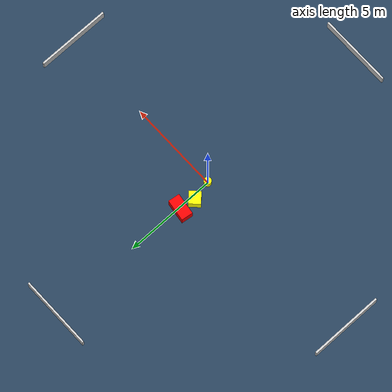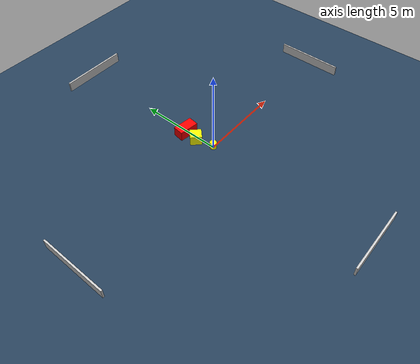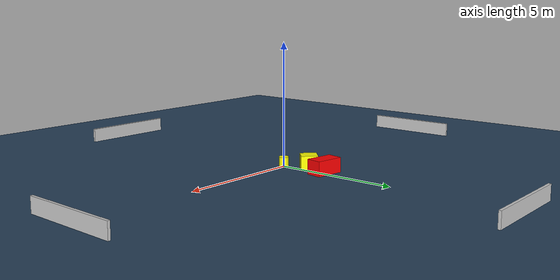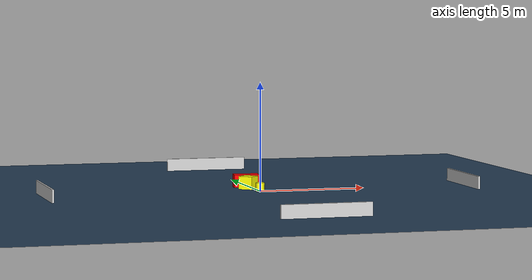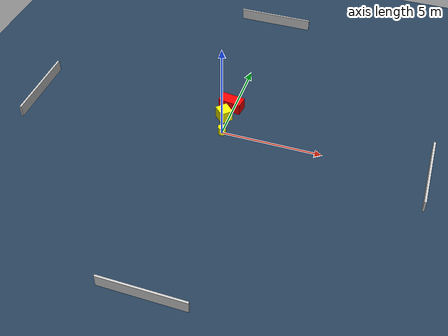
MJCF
<?xml version="1.0" ?>
<mujoco model="generated_environment">
  <option timestep="0.01" integrator="RK4" cone="elliptic"/>
  <default>
    <geom density="1"/>
  </default>
  <asset>
    <texture builtin="gradient" height="3072" name="skybox" rgb1="0.3 0.5 0.7" rgb2="0 0 0" type="skybox" width="512"/>
    <texture builtin="checker" height="300" name="groundplane" rgb1="0.2 0.3 0.4" rgb2="0.1 0.2 0.3" type="2d" width="300"/>
    <material name="groundplane" reflectance="0.2" texrepeat="5 5" texture="groundplane"/>
  </asset>
  <worldbody>
    <light dir="0 0 -1" directional="true" pos="0 0 1.5"/>
    <geom condim="3" friction="0.5 0.005 0.001" material="groundplane" name="floor" pos="0 0 0" size="0 0 0.05" type="plane"/>
    <body name="walls">
      <geom name="wall_1" condim="4" pos="-10.0 0.0 0.3" rgba="0.800000011920929 0.800000011920929 0.800000011920929 1.0" size="0.05 2.0 0.3" type="box"/>
      <geom name="wall_2" condim="4" pos="10.0 0.0 0.3" rgba="0.800000011920929 0.800000011920929 0.800000011920929 1.0" size="0.05 2.0 0.3" type="box"/>
      <geom name="wall_3" condim="4" pos="0.0 -10.0 0.3" rgba="0.800000011920929 0.800000011920929 0.800000011920929 1.0" size="2.0 0.05 0.3" type="box"/>
      <geom name="wall_4" condim="4" pos="0.0 10.0 0.3" rgba="0.800000011920929 0.800000011920929 0.800000011920929 1.0" size="2.0 0.05 0.3" type="box"/>
    </body>
    <body name="robot">
      <joint name="joint_x" type="slide" pos="0 0 0" axis="1 0 0"/>
      <joint name="joint_y" type="slide" pos="0 0 0" axis="0 1 0"/>
      <geom name="robot" type="cylinder" pos="0.0 0.0 0.2" size="0.2 0.2 0.0" mass="5.0" friction="1.0 0.005 0.0001" condim="4" rgba="1.0 1.0 0.0 1.0"/>
    </body>
    <body name="obstacle_1_movable">
      <geom name="obstacle_1_movable" condim="4" pos="-0.2532358895187174 1.0813110765443834 0.3" euler="0 0 44.76127739733086" friction="0.0 0.005 0.001" rgba="1.0 1.0 0.0 1.0" size="0.3161434907322478 0.3366749353060301 0.3" type="box" mass="0.1"/>
      <joint type="free"/>
    </body>
    <body name="obstacle_2_static">
      <geom name="obstacle_2_static" condim="4" pos="-0.13709694740588796 1.9363364727385468 0.3" euler="0 0 262.25439524592633" friction="0.0 0.005 0.001" rgba="1.0 0.0 0.0 1.0" size="0.315255716517871 0.5882083289096043 0.3" type="box"/>
    </body>
  </worldbody>
  <actuator>
    <motor name="actuator_x" joint="joint_x" gear="1" ctrlrange="-1 1"/>
    <motor name="actuator_y" joint="joint_y" gear="1" ctrlrange="-1 1"/>
  </actuator>
</mujoco>
